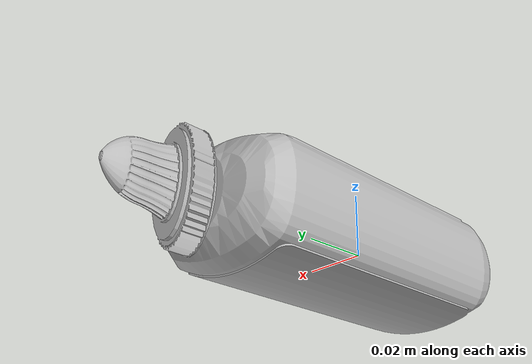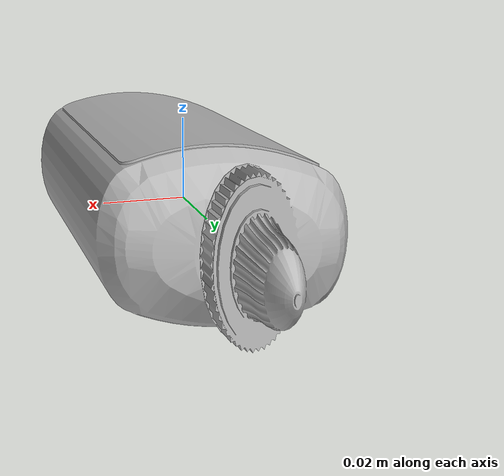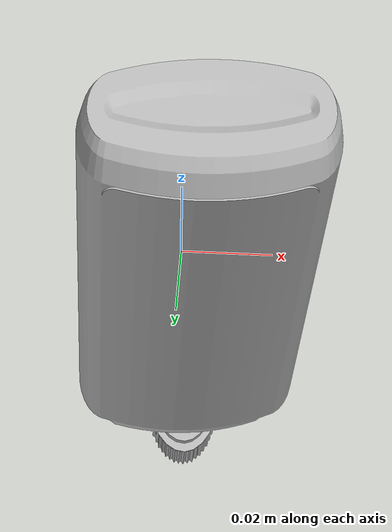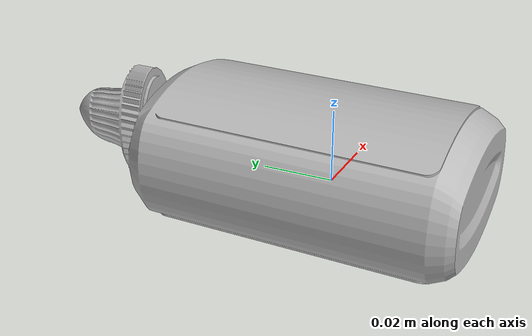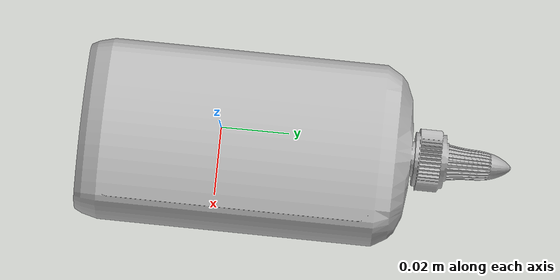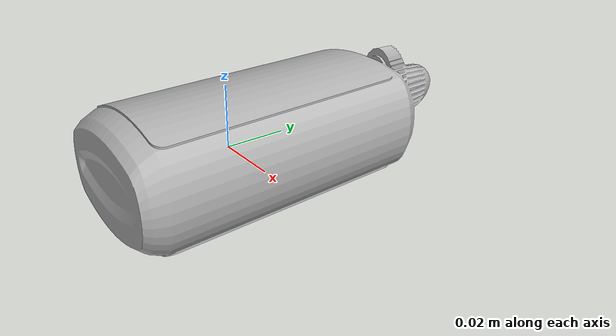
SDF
<?xml version="1.0" ?>
<sdf version="1.4">
  <model name="glue">
    <link name="glue_link">
      <inertial>
        <pose>0.0 0.0 -0.01 0 0 0</pose>
        <mass>0.8</mass>
        <inertia>
          <ixx>0.01667</ixx>
	  <ixy>0.0</ixy>
	  <ixz>0.0</ixz>
	  <iyy>0.01667</iyy>
	  <iyz>0.0</iyz>
	  <izz>0.01667</izz>
	</inertia>
      </inertial>

      <visual name="glue_visual">
        <pose>-0.017 -0.04 0 -1.57079632679489 0 0</pose>
        <material>
	  <lighting>1</lighting>
	  <emissive>1 1 1 1</emissive>
        </material>
        <geometry>
          <mesh>
            <uri>model://glue/meshes/glue.dae</uri>
            <scale>0.7 1.4 0.7</scale>
          </mesh>
        </geometry>
      </visual>

      <collision name="glue_collision">
        <pose>0.004 0.007 0.005 0 0 -0</pose>
        <geometry>
          <box>
            <size>0.052 0.088 0.045</size>
          </box>
        </geometry>
        <max_contacts>10</max_contacts>
        <surface>
          <contact>
            <ode/>
          </contact>
          <bounce/>
          <friction>
            <torsional>
              <ode/>
            </torsional>
            <ode>
              <mu>1</mu>
              <mu2>1</mu2>
            </ode>
          </friction>
        </surface>
      </collision>

    </link>
  </model>
</sdf>
